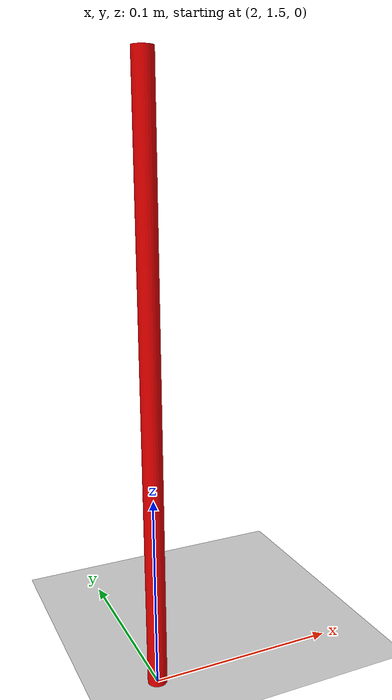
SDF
<?xml version="1.0" ?>
<sdf version="1.6">
  <world name="puzzlebot_empty">
    <physics type="ode">
      <max_step_size>0.001</max_step_size>
      <real_time_factor>1.0</real_time_factor>
    </physics>
    <include><uri>model://sun</uri></include>
    <include><uri>model://ground_plane</uri></include>

    <!-- Goal marker -->
    <model name="goal_marker">
      <static>true</static>
      <pose>2.0 1.5 0.15 0 0 0</pose>
      <link name="link">
        <visual name="v">
          <geometry><cylinder><radius>0.005</radius><length>0.30</length></cylinder></geometry>
          <material><ambient>1 0 0 1</ambient></material>
        </visual>
      </link>
    </model>

    <gui>
      <camera name="user_camera">
        <pose>1.0 -2.5 3.5 0 0.7 1.57</pose>
      </camera>
    </gui>
  </world>
</sdf>
